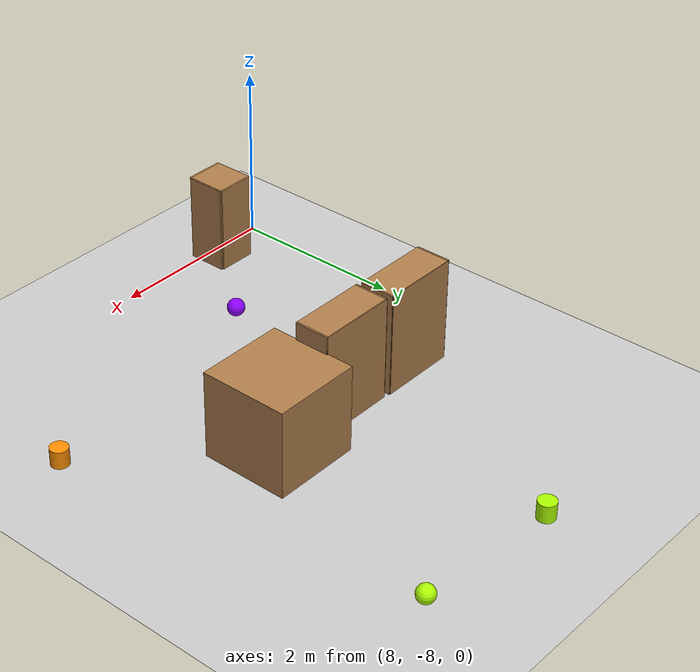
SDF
<sdf version="1.7">
 <world name="default">
  <model name="ground_plane">
   <pose>0 0 0 0 -0 0.716815</pose>
   <static>1</static>
   <link name="link">
    <collision name="collision">
     <geometry><plane><normal>0 0 1</normal><size>100 100</size></plane></geometry>
     <surface><friction><ode><mu>100</mu><mu2>50</mu2></ode></friction></surface>
    </collision>
    <visual name="visual">
     <cast_shadows>0</cast_shadows>
     <geometry><plane><normal>0 0 1</normal><size>100 100</size></plane></geometry>
     <material>
      <script><uri>file://media/materials/scripts/gazebo.material</uri><name>Gazebo/Grey</name></script>
     </material>
    </visual>
   </link>
  </model>
  <model name="sphere_gy">
   <link name="link_1">
    <pose>0 0 0.1 0 -0 0</pose>
    <inertial>
     <mass>1</mass>
     <inertia><ixx>0.1</ixx><ixy>0</ixy><ixz>0</ixz><iyy>0.1</iyy><iyz>0</iyz><izz>0.1</izz></inertia>
    </inertial>
    <visual name="visual">
     <geometry><sphere><radius>0.1</radius></sphere></geometry>
     <material>
      <lighting>1</lighting>
      <script><uri>file://media/materials/scripts/gazebo.material</uri><name>Gazebo/Grey</name></script>
      <ambient>0.675 1 0 1</ambient>
      <diffuse>0.675 1 0 1</diffuse>
      <specular>0 0 0 1</specular>
      <emissive>0 0 0 1</emissive>
      <shader type="vertex"><normal_map>__default__</normal_map></shader>
     </material>
    </visual>
    <collision name="collision">
     <geometry><sphere><radius>0.1</radius></sphere></geometry>
     <surface>
      <friction>
       <ode><mu>1</mu><mu2>1</mu2><fdir1>0 0 0</fdir1><slip1>0</slip1><slip2>0</slip2></ode>
       <torsional>
        <coefficient>1</coefficient>
        <patch_radius>0</patch_radius>
        <surface_radius>0</surface_radius>
        <use_patch_radius>1</use_patch_radius>
        <ode><slip>0</slip></ode>
       </torsional>
      </friction>
      <bounce><restitution_coefficient>0</restitution_coefficient><threshold>1e+06</threshold></bounce>
      <contact>
       <collide_without_contact>0</collide_without_contact>
       <collide_without_contact_bitmask>1</collide_without_contact_bitmask>
       <collide_bitmask>1</collide_bitmask>
       <ode>
        <soft_cfm>0</soft_cfm>
        <soft_erp>0.2</soft_erp>
        <kp>1e+13</kp>
        <kd>1</kd>
        <max_vel>0.01</max_vel>
        <min_depth>0</min_depth>
       </ode>
       <bullet>
        <split_impulse>1</split_impulse>
        <split_impulse_penetration_threshold>-0.01</split_impulse_penetration_threshold>
        <soft_cfm>0</soft_cfm>
        <soft_erp>0.2</soft_erp>
        <kp>1e+13</kp>
        <kd>1</kd>
       </bullet>
      </contact>
     </surface>
    </collision>
   </link>
   <static>1</static>
   <pose>11.715 -2.51628 0 0 -0 0</pose>
  </model>
  <model name="sphere_vb">
   <link name="link_1">
    <pose>0 0 0.1 0 -0 0</pose>
    <inertial>
     <mass>1</mass>
     <inertia><ixx>0.1</ixx><ixy>0</ixy><ixz>0</ixz><iyy>0.1</iyy><iyz>0</iyz><izz>0.1</izz></inertia>
    </inertial>
    <visual name="visual">
     <geometry><sphere><radius>0.1</radius></sphere></geometry>
     <material>
      <lighting>1</lighting>
      <script><uri>file://media/materials/scripts/gazebo.material</uri><name>Gazebo/Grey</name></script>
      <ambient>0.549 0 1 1</ambient>
      <diffuse>0.549 0 1 1</diffuse>
      <specular>0 0 0 1</specular>
      <emissive>0 0 0 1</emissive>
      <shader type="vertex"><normal_map>__default__</normal_map></shader>
     </material>
    </visual>
    <collision name="collision">
     <geometry><sphere><radius>0.1</radius></sphere></geometry>
     <surface>
      <friction>
       <ode><mu>1</mu><mu2>1</mu2><fdir1>0 0 0</fdir1><slip1>0</slip1><slip2>0</slip2></ode>
       <torsional>
        <coefficient>1</coefficient>
        <patch_radius>0</patch_radius>
        <surface_radius>0</surface_radius>
        <use_patch_radius>1</use_patch_radius>
        <ode><slip>0</slip></ode>
       </torsional>
      </friction>
      <bounce><restitution_coefficient>0</restitution_coefficient><threshold>1e+06</threshold></bounce>
      <contact>
       <collide_without_contact>0</collide_without_contact>
       <collide_without_contact_bitmask>1</collide_without_contact_bitmask>
       <collide_bitmask>1</collide_bitmask>
       <ode>
        <soft_cfm>0</soft_cfm>
        <soft_erp>0.2</soft_erp>
        <kp>1e+13</kp>
        <kd>1</kd>
        <max_vel>0.01</max_vel>
        <min_depth>0</min_depth>
       </ode>
       <bullet>
        <split_impulse>1</split_impulse>
        <split_impulse_penetration_threshold>-0.01</split_impulse_penetration_threshold>
        <soft_cfm>0</soft_cfm>
        <soft_erp>0.2</soft_erp>
        <kp>1e+13</kp>
        <kd>1</kd>
       </bullet>
      </contact>
     </surface>
    </collision>
   </link>
   <static>1</static>
   <pose>9.46236 -6.89794 0 0 -0 0</pose>
  </model>
  <model name="cylinder_gy">
   <link name="link_0">
    <pose>0 0 0.1 0 -0 0</pose>
    <inertial>
     <mass>1</mass>
     <inertia><ixx>0.145833</ixx><ixy>0</ixy><ixz>0</ixz><iyy>0.145833</iyy><iyz>0</iyz><izz>0.125</izz></inertia>
    </inertial>
    <visual name="visual">
     <geometry><cylinder><radius>0.1</radius><length>0.2</length></cylinder></geometry>
     <material>
      <lighting>1</lighting>
      <script><uri>file://media/materials/scripts/gazebo.material</uri><name>Gazebo/Grey</name></script>
      <ambient>0.675 1 0 1</ambient>
      <diffuse>0.675 1 0 1</diffuse>
      <specular>0 0 0 1</specular>
      <emissive>0 0 0 1</emissive>
      <shader type="vertex"><normal_map>__default__</normal_map></shader>
     </material>
    </visual>
    <collision name="collision">
     <geometry><cylinder><radius>0.1</radius><length>0.2</length></cylinder></geometry>
     <surface>
      <friction>
       <ode><mu>1</mu><mu2>1</mu2><fdir1>0 0 0</fdir1><slip1>0</slip1><slip2>0</slip2></ode>
       <torsional>
        <coefficient>1</coefficient>
        <patch_radius>0</patch_radius>
        <surface_radius>0</surface_radius>
        <use_patch_radius>1</use_patch_radius>
        <ode><slip>0</slip></ode>
       </torsional>
      </friction>
      <bounce><restitution_coefficient>0</restitution_coefficient><threshold>1e+06</threshold></bounce>
      <contact>
       <collide_without_contact>0</collide_without_contact>
       <collide_without_contact_bitmask>1</collide_without_contact_bitmask>
       <collide_bitmask>1</collide_bitmask>
       <ode>
        <soft_cfm>0</soft_cfm>
        <soft_erp>0.2</soft_erp>
        <kp>1e+13</kp>
        <kd>1</kd>
        <max_vel>0.01</max_vel>
        <min_depth>0</min_depth>
       </ode>
       <bullet>
        <split_impulse>1</split_impulse>
        <split_impulse_penetration_threshold>-0.01</split_impulse_penetration_threshold>
        <soft_cfm>0</soft_cfm>
        <soft_erp>0.2</soft_erp>
        <kp>1e+13</kp>
        <kd>1</kd>
       </bullet>
      </contact>
     </surface>
    </collision>
   </link>
   <static>1</static>
   <pose>10.0532 -2.3848 0 0 -0 0</pose>
  </model>
  <model name="cylinder_o_0">
   <link name="link_0">
    <pose>0 0 0.1 0 -0 0</pose>
    <inertial>
     <mass>1</mass>
     <inertia><ixx>0.145833</ixx><ixy>0</ixy><ixz>0</ixz><iyy>0.145833</iyy><iyz>0</iyz><izz>0.125</izz></inertia>
    </inertial>
    <visual name="visual">
     <geometry><cylinder><radius>0.1</radius><length>0.2</length></cylinder></geometry>
     <material>
      <lighting>1</lighting>
      <script><uri>file://media/materials/scripts/gazebo.material</uri><name>Gazebo/Grey</name></script>
      <ambient>1 0.561 0 1</ambient>
      <diffuse>1 0.561 0 1</diffuse>
      <specular>0 0 0 1</specular>
      <emissive>0 0 0 1</emissive>
      <shader type="vertex"><normal_map>__default__</normal_map></shader>
     </material>
    </visual>
    <collision name="collision">
     <geometry><cylinder><radius>0.1</radius><length>0.2</length></cylinder></geometry>
     <surface>
      <friction>
       <ode><mu>1</mu><mu2>1</mu2><fdir1>0 0 0</fdir1><slip1>0</slip1><slip2>0</slip2></ode>
       <torsional>
        <coefficient>1</coefficient>
        <patch_radius>0</patch_radius>
        <surface_radius>0</surface_radius>
        <use_patch_radius>1</use_patch_radius>
        <ode><slip>0</slip></ode>
       </torsional>
      </friction>
      <bounce><restitution_coefficient>0</restitution_coefficient><threshold>1e+06</threshold></bounce>
      <contact>
       <collide_without_contact>0</collide_without_contact>
       <collide_without_contact_bitmask>1</collide_without_contact_bitmask>
       <collide_bitmask>1</collide_bitmask>
       <ode>
        <soft_cfm>0</soft_cfm>
        <soft_erp>0.2</soft_erp>
        <kp>1e+13</kp>
        <kd>1</kd>
        <max_vel>0.01</max_vel>
        <min_depth>0</min_depth>
       </ode>
       <bullet>
        <split_impulse>1</split_impulse>
        <split_impulse_penetration_threshold>-0.01</split_impulse_penetration_threshold>
        <soft_cfm>0</soft_cfm>
        <soft_erp>0.2</soft_erp>
        <kp>1e+13</kp>
        <kd>1</kd>
       </bullet>
      </contact>
     </surface>
    </collision>
   </link>
   <static>1</static>
   <pose>12.5066 -6.40317 0 0 -0 0</pose>
  </model>
  <model name="obs1x1_0">
   <pose>11.3679 -4.50767 0 0 -0 0</pose>
   <link name="Wall_0">
    <collision name="Wall_0_Collision">
     <geometry><box><size>1.01 1 1</size></box></geometry>
     <pose>0 0 0.5 0 -0 0</pose>
    </collision>
    <visual name="Wall_0_Visual">
     <pose>0 0 0.5 0 -0 0</pose>
     <geometry><box><size>1.01 1 1</size></box></geometry>
     <material>
      <script><uri>file://media/materials/scripts/gazebo.material</uri><name>Gazebo/Wood</name></script>
      <ambient>1 1 1 1</ambient>
     </material>
     <meta><layer>0</layer></meta>
    </visual>
    <pose>-0.39 -0.41 0 0 -0 0</pose>
   </link>
   <static>1</static>
  </model>
  <model name="cabinet">
   <static>1</static>
   <link name="cabinet_bottom_plate">
    <inertial>
     <pose>0 0 -1 0 -0 0</pose>
     <inertia><ixx>2.05</ixx><ixy>0</ixy><ixz>0</ixz><iyy>2.05</iyy><iyz>0</iyz><izz>2.05</izz></inertia>
     <mass>25</mass>
    </inertial>
    <collision name="cabinet_bottom_plate_geom">
     <pose>0 0 0.01 0 -0 0</pose>
     <geometry><box><size>0.45 0.45 0.02</size></box></geometry>
    </collision>
    <visual name="cabinet_bottom_plate_geom_visual">
     <pose>0 0 0.01 0 -0 0</pose>
     <geometry><box><size>0.45 0.45 0.02</size></box></geometry>
     <material>
      <script><uri>file://media/materials/scripts/gazebo.material</uri><name>Gazebo/Wood</name></script>
     </material>
    </visual>
    <collision name="cabinet_bottom_plate_geom_cabinet_back_plate">
     <pose>0.235 0 0.51 0 -0 0</pose>
     <geometry><box><size>0.02 0.45 1.02</size></box></geometry>
    </collision>
    <visual name="cabinet_bottom_plate_geom_cabinet_back_plate_visual">
     <pose>0.235 0 0.51 0 -0 0</pose>
     <geometry><box><size>0.02 0.45 1.02</size></box></geometry>
     <material>
      <script><uri>file://media/materials/scripts/gazebo.material</uri><name>Gazebo/Wood</name></script>
     </material>
    </visual>
    <collision name="cabinet_bottom_plate_geom_cabinet_left_plate">
     <pose>0 0.235 0.51 0 -0 0</pose>
     <geometry><box><size>0.45 0.02 1.02</size></box></geometry>
    </collision>
    <visual name="cabinet_bottom_plate_geom_cabinet_left_plate_visual">
     <pose>0 0.235 0.51 0 -0 0</pose>
     <geometry><box><size>0.45 0.02 1.02</size></box></geometry>
     <material>
      <script><uri>file://media/materials/scripts/gazebo.material</uri><name>Gazebo/Wood</name></script>
     </material>
    </visual>
    <collision name="cabinet_bottom_plate_geom_cabinet_middle_plate">
     <pose>0 0 0.51 0 -0 0</pose>
     <geometry><box><size>0.45 0.45 0.02</size></box></geometry>
    </collision>
    <visual name="cabinet_bottom_plate_geom_cabinet_middle_plate_visual">
     <pose>0 0 0.51 0 -0 0</pose>
     <geometry><box><size>0.45 0.45 0.02</size></box></geometry>
     <material>
      <script><uri>file://media/materials/scripts/gazebo.material</uri><name>Gazebo/Wood</name></script>
     </material>
    </visual>
    <collision name="cabinet_bottom_plate_geom_cabinet_right_plate">
     <pose>0 -0.235 0.51 0 -0 0</pose>
     <geometry><box><size>0.45 0.02 1.02</size></box></geometry>
    </collision>
    <visual name="cabinet_bottom_plate_geom_cabinet_right_plate_visual">
     <pose>0 -0.235 0.51 0 -0 0</pose>
     <geometry><box><size>0.45 0.02 1.02</size></box></geometry>
     <material>
      <script><uri>file://media/materials/scripts/gazebo.material</uri><name>Gazebo/Wood</name></script>
     </material>
    </visual>
    <collision name="cabinet_bottom_plate_geom_cabinet_top_plate">
     <pose>0 0 1.01 0 -0 0</pose>
     <geometry><box><size>0.45 0.45 0.02</size></box></geometry>
    </collision>
    <visual name="cabinet_bottom_plate_geom_cabinet_top_plate_visual">
     <pose>0 0 1.01 0 -0 0</pose>
     <geometry><box><size>0.45 0.45 0.02</size></box></geometry>
     <material>
      <script><uri>file://media/materials/scripts/gazebo.material</uri><name>Gazebo/Wood</name></script>
     </material>
    </visual>
   </link>
   <pose>8.6486 -7.88227 0 0 -0 0</pose>
  </model>
  <model name="bookshelf">
   <static>1</static>
   <link name="link">
    <inertial><mass>1</mass></inertial>
    <collision name="back">
     <pose>0 0.005 0.6 0 -0 0</pose>
     <geometry><box><size>0.9 0.01 1.2</size></box></geometry>
    </collision>
    <visual name="visual1">
     <pose>0 0.005 0.6 0 -0 0</pose>
     <geometry><box><size>0.9 0.01 1.2</size></box></geometry>
     <material>
      <script><uri>file://media/materials/scripts/gazebo.material</uri><name>Gazebo/Wood</name></script>
     </material>
    </visual>
    <collision name="left_side">
     <pose>0.45 -0.195 0.6 0 -0 0</pose>
     <geometry><box><size>0.02 0.4 1.2</size></box></geometry>
    </collision>
    <visual name="visual2">
     <pose>0.45 -0.195 0.6 0 -0 0</pose>
     <geometry><box><size>0.02 0.4 1.2</size></box></geometry>
     <material>
      <script><uri>file://media/materials/scripts/gazebo.material</uri><name>Gazebo/Wood</name></script>
     </material>
    </visual>
    <collision name="right_side">
     <pose>-0.45 -0.195 0.6 0 -0 0</pose>
     <geometry><box><size>0.02 0.4 1.2</size></box></geometry>
    </collision>
    <visual name="visual3">
     <pose>-0.45 -0.195 0.6 0 -0 0</pose>
     <geometry><box><size>0.02 0.4 1.2</size></box></geometry>
     <material>
      <script><uri>file://media/materials/scripts/gazebo.material</uri><name>Gazebo/Wood</name></script>
     </material>
    </visual>
    <collision name="bottom">
     <pose>0 -0.195 0.03 0 -0 0</pose>
     <geometry><box><size>0.88 0.4 0.06</size></box></geometry>
    </collision>
    <visual name="visual4">
     <pose>0 -0.195 0.03 0 -0 0</pose>
     <geometry><box><size>0.88 0.4 0.06</size></box></geometry>
     <material>
      <script><uri>file://media/materials/scripts/gazebo.material</uri><name>Gazebo/Wood</name></script>
     </material>
    </visual>
    <collision name="top">
     <pose>0 -0.195 1.19 0 -0 0</pose>
     <geometry><box><size>0.88 0.4 0.02</size></box></geometry>
    </collision>
    <visual name="visual5">
     <pose>0 -0.195 1.19 0 -0 0</pose>
     <geometry><box><size>0.88 0.4 0.02</size></box></geometry>
     <material>
      <script><uri>file://media/materials/scripts/gazebo.material</uri><name>Gazebo/Wood</name></script>
     </material>
    </visual>
    <collision name="low_shelf">
     <pose>0 -0.195 0.43 0 -0 0</pose>
     <geometry><box><size>0.88 0.4 0.02</size></box></geometry>
    </collision>
    <visual name="visual6">
     <pose>0 -0.195 0.43 0 -0 0</pose>
     <geometry><box><size>0.88 0.4 0.02</size></box></geometry>
     <material>
      <script><uri>file://media/materials/scripts/gazebo.material</uri><name>Gazebo/Wood</name></script>
     </material>
    </visual>
    <collision name="high_shelf">
     <pose>0 -0.195 0.8 0 -0 0</pose>
     <geometry><box><size>0.88 0.4 0.02</size></box></geometry>
    </collision>
    <visual name="visual7">
     <pose>0 -0.195 0.8 0 -0 0</pose>
     <geometry><box><size>0.88 0.4 0.02</size></box></geometry>
     <material>
      <script><uri>file://media/materials/scripts/gazebo.material</uri><name>Gazebo/Wood</name></script>
     </material>
    </visual>
   </link>
   <pose>10.0284 -4.73071 0 0 -0 0</pose>
  </model>
  <model name="bookshelf_0">
   <static>1</static>
   <link name="link">
    <inertial><mass>1</mass></inertial>
    <collision name="back">
     <pose>0 0.005 0.6 0 -0 0</pose>
     <geometry><box><size>0.9 0.01 1.2</size></box></geometry>
    </collision>
    <visual name="visual1">
     <pose>0 0.005 0.6 0 -0 0</pose>
     <geometry><box><size>0.9 0.01 1.2</size></box></geometry>
     <material>
      <script><uri>file://media/materials/scripts/gazebo.material</uri><name>Gazebo/Wood</name></script>
     </material>
    </visual>
    <collision name="left_side">
     <pose>0.45 -0.195 0.6 0 -0 0</pose>
     <geometry><box><size>0.02 0.4 1.2</size></box></geometry>
    </collision>
    <visual name="visual2">
     <pose>0.45 -0.195 0.6 0 -0 0</pose>
     <geometry><box><size>0.02 0.4 1.2</size></box></geometry>
     <material>
      <script><uri>file://media/materials/scripts/gazebo.material</uri><name>Gazebo/Wood</name></script>
     </material>
    </visual>
    <collision name="right_side">
     <pose>-0.45 -0.195 0.6 0 -0 0</pose>
     <geometry><box><size>0.02 0.4 1.2</size></box></geometry>
    </collision>
    <visual name="visual3">
     <pose>-0.45 -0.195 0.6 0 -0 0</pose>
     <geometry><box><size>0.02 0.4 1.2</size></box></geometry>
     <material>
      <script><uri>file://media/materials/scripts/gazebo.material</uri><name>Gazebo/Wood</name></script>
     </material>
    </visual>
    <collision name="bottom">
     <pose>0 -0.195 0.03 0 -0 0</pose>
     <geometry><box><size>0.88 0.4 0.06</size></box></geometry>
    </collision>
    <visual name="visual4">
     <pose>0 -0.195 0.03 0 -0 0</pose>
     <geometry><box><size>0.88 0.4 0.06</size></box></geometry>
     <material>
      <script><uri>file://media/materials/scripts/gazebo.material</uri><name>Gazebo/Wood</name></script>
     </material>
    </visual>
    <collision name="top">
     <pose>0 -0.195 1.19 0 -0 0</pose>
     <geometry><box><size>0.88 0.4 0.02</size></box></geometry>
    </collision>
    <visual name="visual5">
     <pose>0 -0.195 1.19 0 -0 0</pose>
     <geometry><box><size>0.88 0.4 0.02</size></box></geometry>
     <material>
      <script><uri>file://media/materials/scripts/gazebo.material</uri><name>Gazebo/Wood</name></script>
     </material>
    </visual>
    <collision name="low_shelf">
     <pose>0 -0.195 0.43 0 -0 0</pose>
     <geometry><box><size>0.88 0.4 0.02</size></box></geometry>
    </collision>
    <visual name="visual6">
     <pose>0 -0.195 0.43 0 -0 0</pose>
     <geometry><box><size>0.88 0.4 0.02</size></box></geometry>
     <material>
      <script><uri>file://media/materials/scripts/gazebo.material</uri><name>Gazebo/Wood</name></script>
     </material>
    </visual>
    <collision name="high_shelf">
     <pose>0 -0.195 0.8 0 -0 0</pose>
     <geometry><box><size>0.88 0.4 0.02</size></box></geometry>
    </collision>
    <visual name="visual7">
     <pose>0 -0.195 0.8 0 -0 0</pose>
     <geometry><box><size>0.88 0.4 0.02</size></box></geometry>
     <material>
      <script><uri>file://media/materials/scripts/gazebo.material</uri><name>Gazebo/Wood</name></script>
     </material>
    </visual>
   </link>
   <pose>9.05428 -4.71174 0 0 -0 0</pose>
  </model>
 </world>
</sdf>
